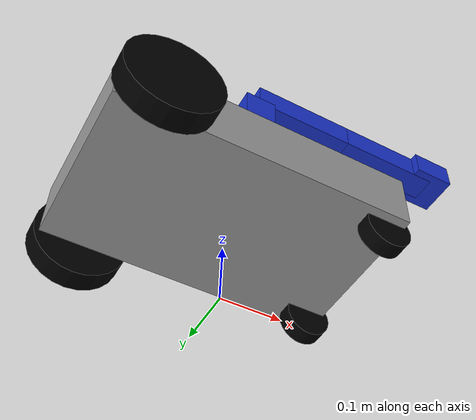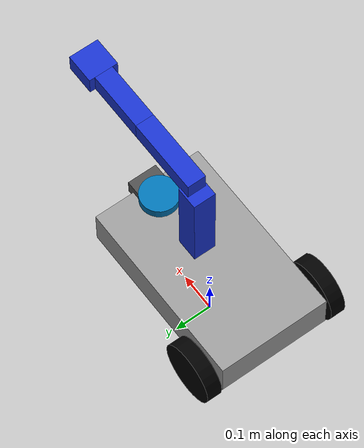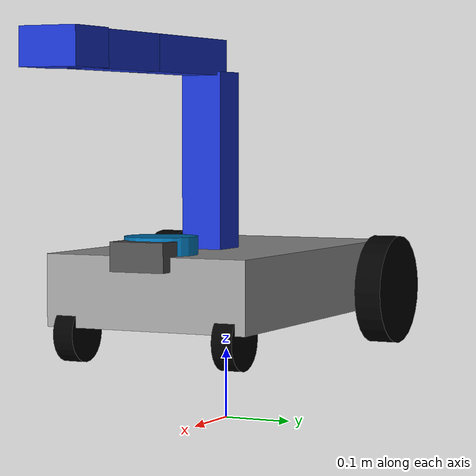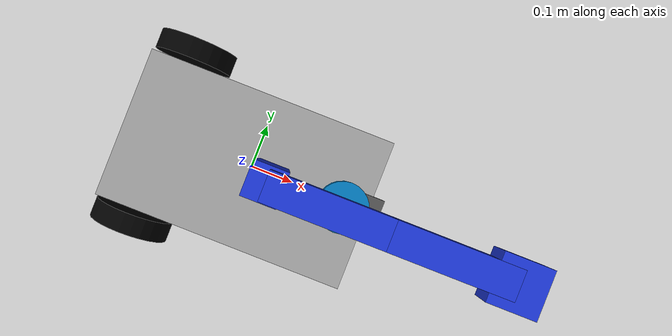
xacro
<?xml version="1.0"?>
<robot xmlns:xacro="http://www.ros.org/wiki/xacro" name="warehouse_robot">

  <!--COLORS-->
  <material name="grey"><color rgba="0.6 0.6 0.6 1"/></material>
  <material name="blue"><color rgba="0.1 0.2 0.8 1"/></material>
  <material name="black"><color rgba="0 0 0 1"/></material>

  <!--ROOT-->
  <link name="base_footprint"/>

  <joint name="base_joint" type="fixed">
    <parent link="base_footprint"/>
    <child link="base_link"/>
    <origin xyz="0 0 0.10"/>
  </joint>

  <!--BASE-->
  <link name="base_link">
    <visual>
      <origin xyz="0 0 0.10"/>
      <geometry><box size="0.5 0.3 0.1"/></geometry>
      <material name="grey"/>
    </visual>
    <collision>
      <origin xyz="0 0 0.10"/>
      <geometry><box size="0.5 0.3 0.1"/></geometry>
    </collision>
    <inertial>
      <mass value="8"/>
      <inertia ixx="0.12" iyy="0.2" izz="0.25"
               ixy="0" ixz="0" iyz="0"/>
    </inertial>
  </link>

  <!--DRIVE WHEELS-->
  <xacro:macro name="wheel" params="name y">
    <link name="${name}_wheel_link">
      <visual>
        <origin rpy="1.5708 0 0"/>
        <geometry><cylinder radius="0.08" length="0.04"/></geometry>
        <material name="black"/>
      </visual>
      <collision>
        <origin rpy="1.5708 0 0"/>
        <geometry><cylinder radius="0.08" length="0.04"/></geometry>
      </collision>
      <inertial>
        <mass value="1"/>
        <inertia ixx="0.02" iyy="0.01" izz="0.02"
                 ixy="0" ixz="0" iyz="0"/>
      </inertial>
    </link>

    <joint name="${name}_wheel_joint" type="continuous">
      <parent link="base_link"/>
      <child link="${name}_wheel_link"/>
      <origin xyz="-0.18 ${y} 0.08"/>
      <axis xyz="0 1 0"/>
    </joint>
  </xacro:macro>

  <xacro:wheel name="left" y="0.18"/>
  <xacro:wheel name="right" y="-0.18"/>

  <!--CASTERS-->
  <xacro:macro name="caster" params="name x y">

    <link name="${name}_steer_link">
      <inertial>
        <mass value="0.2"/>
        <inertia ixx="0.001" iyy="0.001" izz="0.001"
                 ixy="0" ixz="0" iyz="0"/>
      </inertial>
    </link>

    <joint name="${name}_steer_joint" type="continuous">
      <parent link="base_link"/>
      <child link="${name}_steer_link"/>
      <origin xyz="${x} ${y} 0.08"/>
      <axis xyz="0 0 1"/>
    </joint>

    <link name="${name}_wheel_link">
      <visual>
        <origin rpy="1.5708 0 0"/>
        <geometry><cylinder radius="0.04" length="0.03"/></geometry>
        <material name="black"/>
      </visual>
      <collision>
        <origin rpy="1.5708 0 0"/>
        <geometry><cylinder radius="0.04" length="0.03"/></geometry>
      </collision>
      <inertial>
        <mass value="0.3"/>
        <inertia ixx="0.002" iyy="0.001" izz="0.002"
                 ixy="0" ixz="0" iyz="0"/>
      </inertial>
    </link>

    <joint name="${name}_wheel_joint" type="continuous">
      <parent link="${name}_steer_link"/>
      <child link="${name}_wheel_link"/>
      <origin xyz="0 0 -0.04"/>
      <axis xyz="0 1 0"/>
    </joint>

  </xacro:macro>

  <xacro:caster name="front_left"  x="0.22" y="0.12"/>
  <xacro:caster name="front_right" x="0.22" y="-0.12"/>

  <!--ARM BASE-->
  <link name="arm_base">
    <visual>
      <origin xyz="0 0 0.15"/>
      <geometry><box size="0.06 0.06 0.3"/></geometry>
      <material name="blue"/>
    </visual>
    <collision>
      <origin xyz="0 0 0.15"/>
      <geometry><box size="0.06 0.06 0.3"/></geometry>
    </collision>
    <inertial>
      <mass value="1.5"/>
      <inertia ixx="0.02" iyy="0.02" izz="0.02"
               ixy="0" ixz="0" iyz="0"/>
    </inertial>
  </link>

  <joint name="arm_base_joint" type="fixed">
    <parent link="base_link"/>
    <child link="arm_base"/>
    <origin xyz="0.05 0 0.1"/>
  </joint>

  <!--LOWER ARM-->
  <link name="arm_link1">
    <visual>
      <origin xyz="0.1 0 0"/>
      <geometry><box size="0.2 0.05 0.05"/></geometry>
      <material name="blue"/>
    </visual>
    <collision>
      <origin xyz="0.1 0 0"/>
      <geometry><box size="0.2 0.05 0.05"/></geometry>
    </collision>
    <inertial>
      <mass value="0.7"/>
      <inertia ixx="0.01" iyy="0.01" izz="0.01"
               ixy="0" ixz="0" iyz="0"/>
    </inertial>
  </link>

  <!--FIXED SHOULDER-->
  <joint name="shoulder_joint" type="revolute">
    <parent link="arm_base"/>
    <child link="arm_link1"/>
    <origin xyz="0 0 0.32"/>
    <axis xyz="0 1 0"/>
    <!--PREVENT DOWNWARD COLLISION-->
    <limit lower="0.0" upper="1.57" effort="20" velocity="1"/>
  </joint>

  <!--UPPER ARM-->
  <link name="arm_link2">
    <visual>
      <origin xyz="0.1 0 0"/>
      <geometry><box size="0.2 0.05 0.05"/></geometry>
      <material name="blue"/>
    </visual>
    <collision>
      <origin xyz="0.1 0 0"/>
      <geometry><box size="0.2 0.05 0.05"/></geometry>
    </collision>
    <inertial>
      <mass value="0.6"/>
      <inertia ixx="0.01" iyy="0.01" izz="0.01"
               ixy="0" ixz="0" iyz="0"/>
    </inertial>
  </link>

  <joint name="elbow_joint" type="revolute">
    <parent link="arm_link1"/>
    <child link="arm_link2"/>
    <origin xyz="0.2 0 0"/>
    <axis xyz="0 1 0"/>
    <limit lower="0.0" upper="1.57" effort="15" velocity="1"/>
  </joint>

  <!--GRIPPER-->
  <link name="gripper">
    <visual>
      <geometry><box size="0.08 0.08 0.05"/></geometry>
      <material name="blue"/>
    </visual>
    <collision>
      <geometry><box size="0.08 0.08 0.05"/></geometry>
    </collision>
    <inertial>
      <mass value="0.3"/>
      <inertia ixx="0.005" iyy="0.005" izz="0.005"
               ixy="0" ixz="0" iyz="0"/>
    </inertial>
  </link>

  <joint name="wrist_joint" type="fixed">
    <parent link="arm_link2"/>
    <child link="gripper"/>
    <origin xyz="0.2 0 0"/>
  </joint>

  <!--LIDAR-->

  <!--LIDAR LINK-->
  <link name="lidar_link">
    <visual>
      <geometry>
        <cylinder radius="0.05" length="0.05"/>
      </geometry>
    </visual>
    <collision>
      <geometry>
        <cylinder radius="0.05" length="0.05"/>
      </geometry>
    </collision>
    <inertial>
      <mass value="0.1"/>
      <inertia ixx="0.0001" iyy="0.0001" izz="0.0001"
               ixy="0" ixz="0" iyz="0"/>
    </inertial>
  </link>

  <joint name="lidar_joint" type="fixed">
    <parent link="base_link"/>
    <child link="lidar_link"/>
    <origin xyz="0.2 0 0.15"/>
  </joint>

  <!--IMU-->
  <link name="imu_link">
    <inertial>
      <mass value="0.01"/>
      <inertia ixx="0.00001" iyy="0.00001" izz="0.00001"
               ixy="0" ixz="0" iyz="0"/>
    </inertial>
  </link>

  <joint name="imu_joint" type="fixed">
    <parent link="base_link"/>
    <child link="imu_link"/>
    <origin xyz="0 0 0.15"/>
  </joint>

  <gazebo reference="imu_link">
    <sensor name="imu_sensor" type="imu">
      <always_on>true</always_on>
      <update_rate>100</update_rate>
      <visualize>false</visualize>
      <topic>imu</topic>
      <gz_frame_id>imu_link</gz_frame_id>
      <imu>
        <angular_velocity>
          <x><noise type="gaussian"><mean>0</mean><stddev>0.009</stddev></noise></x>
          <y><noise type="gaussian"><mean>0</mean><stddev>0.009</stddev></noise></y>
          <z><noise type="gaussian"><mean>0</mean><stddev>0.009</stddev></noise></z>
        </angular_velocity>
        <linear_acceleration>
          <x><noise type="gaussian"><mean>0</mean><stddev>0.021</stddev></noise></x>
          <y><noise type="gaussian"><mean>0</mean><stddev>0.021</stddev></noise></y>
          <z><noise type="gaussian"><mean>0</mean><stddev>0.021</stddev></noise></z>
        </linear_acceleration>
      </imu>
    </sensor>
  </gazebo>

  <gazebo reference="lidar_link">
    <sensor name="lidar" type="gpu_lidar">
      <always_on>true</always_on>
      <update_rate>10</update_rate>
      <visualize>true</visualize>
      <topic>scan</topic>

      <lidar>
        <scan>
          <horizontal>
            <samples>360</samples>
            <resolution>1</resolution>
            <min_angle>-3.14159</min_angle>
            <max_angle>3.14159</max_angle>
          </horizontal>
          <vertical>
            <samples>1</samples>
            <resolution>1</resolution>
            <min_angle>0</min_angle>
            <max_angle>0</max_angle>
          </vertical>
        </scan>
        <range>
          <min>0.1</min>
          <max>10.0</max>
          <resolution>0.01</resolution>
        </range>
        <noise>
          <type>gaussian</type>
          <mean>0.0</mean>
          <stddev>0.01</stddev>
        </noise>
      </lidar>

      <!-- Required so the bridge fills LaserScan.header.frame_id correctly -->
      <gz_frame_id>lidar_link</gz_frame_id>
    </sensor>
  </gazebo>

  <!-- ═══════════════════════════════════════════════════════
     CAMERA
═══════════════════════════════════════════════════════ -->
  <link name="camera_link">
    <visual>
      <origin xyz="0 0 0" rpy="0 0 0"/>
      <geometry><box size="0.04 0.08 0.04"/></geometry>
      <material name="dark_grey"/>
    </visual>
    <collision>
      <origin xyz="0 0 0" rpy="0 0 0"/>
      <geometry><box size="0.04 0.08 0.04"/></geometry>
    </collision>
    <inertial>
      <mass value="0.05"/>
      <inertia ixx="1e-5" iyy="1e-5" izz="1e-5"
               ixy="0" ixz="0" iyz="0"/>
    </inertial>
  </link>

  <joint name="camera_joint" type="fixed">
    <parent link="base_link"/>
    <child link="camera_link"/>
  <!-- Front of chassis, top face, facing forward (+X) -->
    <origin xyz="0.25 0 0.15" rpy="0 0 0"/>
  </joint>

<!-- Camera optical frame (ROS convention: Z forward, X right, Y down) -->
  <link name="camera_optical_link"/>
  <joint name="camera_optical_joint" type="fixed">
    <parent link="camera_link"/>
    <child link="camera_optical_link"/>
    <origin xyz="0 0 0" rpy="${-pi/2} 0 ${-pi/2}"/>
  </joint>

<!-- Ignition camera sensor -->
  <gazebo reference="camera_link">
    <sensor name="camera" type="camera">
      <always_on>true</always_on>
      <update_rate>30</update_rate>
      <visualize>true</visualize>
      <topic>camera/image_raw</topic>
      <gz_frame_id>camera_optical_link</gz_frame_id>
      <camera>
        <horizontal_fov>1.047</horizontal_fov>
        <image>
          <width>640</width>
          <height>480</height>
          <format>R8G8B8</format>
        </image>
        <clip>
          <near>0.1</near>
          <far>15.0</far>
        </clip>
        <noise>
          <type>gaussian</type>
          <mean>0.0</mean>
          <stddev>0.007</stddev>
        </noise>
      </camera>
    </sensor>
  </gazebo>

  <!--DIFF DRIVE-->
  <gazebo>
    <plugin filename="ignition-gazebo-diff-drive-system"
            name="ignition::gazebo::systems::DiffDrive">
      <left_joint>left_wheel_joint</left_joint>
      <right_joint>right_wheel_joint</right_joint>
      <wheel_separation>0.36</wheel_separation>
      <wheel_radius>0.08</wheel_radius>
      <topic>cmd_vel</topic>
    </plugin>
  </gazebo>

</robot>
